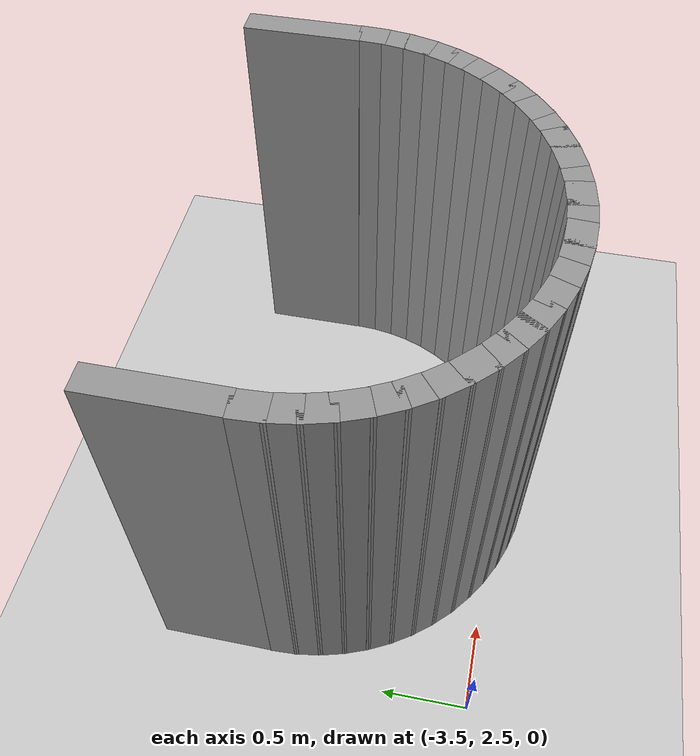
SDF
<sdf version="1.7">
 <world name="default">
  <model name="ground_plane">
   <static>1</static>
   <link name="link">
    <collision name="collision">
     <geometry><plane><normal>0 0 1</normal><size>100 100</size></plane></geometry>
     <surface>
      <contact><collide_bitmask>65535</collide_bitmask></contact>
      <friction><ode><mu>100</mu><mu2>50</mu2></ode></friction>
     </surface>
    </collision>
    <visual name="visual">
     <cast_shadows>0</cast_shadows>
     <geometry><plane><normal>0 0 1</normal><size>100 100</size></plane></geometry>
     <material>
      <script><uri>file://media/materials/scripts/gazebo.material</uri><name>Gazebo/Grey</name></script>
     </material>
    </visual>
   </link>
  </model>
  <model name="map_s_trap_goal_u">
   <link name="Goal_U_bottom_00">
    <collision name="Goal_U_bottom_00_Collision">
     <geometry><box><size>0.171727 0.15 2.5</size></box></geometry>
     <pose>0 0 1.25 0 -0 0</pose>
    </collision>
    <visual name="Goal_U_bottom_00_Visual">
     <pose>0 0 1.25 0 -0 0</pose>
     <geometry><box><size>0.171727 0.15 2.5</size></box></geometry>
     <material>
      <script><uri>file://media/materials/scripts/gazebo.material</uri><name>Gazebo/Grey</name></script>
      <ambient>1 1 1 1</ambient>
     </material>
    </visual>
    <pose>-3.310701 3.625059 0 0 -0 4.764749</pose>
   </link>
   <link name="Goal_U_bottom_01">
    <collision name="Goal_U_bottom_01_Collision">
     <geometry><box><size>0.171727 0.15 2.5</size></box></geometry>
     <pose>0 0 1.25 0 -0 0</pose>
    </collision>
    <visual name="Goal_U_bottom_01_Visual">
     <pose>0 0 1.25 0 -0 0</pose>
     <geometry><box><size>0.171727 0.15 2.5</size></box></geometry>
     <material>
      <script><uri>file://media/materials/scripts/gazebo.material</uri><name>Gazebo/Grey</name></script>
      <ambient>1 1 1 1</ambient>
     </material>
    </visual>
    <pose>-3.296341 3.488430 0 0 -0 4.869469</pose>
   </link>
   <link name="Goal_U_bottom_02">
    <collision name="Goal_U_bottom_02_Collision">
     <geometry><box><size>0.171727 0.15 2.5</size></box></geometry>
     <pose>0 0 1.25 0 -0 0</pose>
    </collision>
    <visual name="Goal_U_bottom_02_Visual">
     <pose>0 0 1.25 0 -0 0</pose>
     <geometry><box><size>0.171727 0.15 2.5</size></box></geometry>
     <material>
      <script><uri>file://media/materials/scripts/gazebo.material</uri><name>Gazebo/Grey</name></script>
      <ambient>1 1 1 1</ambient>
     </material>
    </visual>
    <pose>-3.267778 3.354050 0 0 -0 4.974188</pose>
   </link>
   <link name="Goal_U_bottom_03">
    <collision name="Goal_U_bottom_03_Collision">
     <geometry><box><size>0.171727 0.15 2.5</size></box></geometry>
     <pose>0 0 1.25 0 -0 0</pose>
    </collision>
    <visual name="Goal_U_bottom_03_Visual">
     <pose>0 0 1.25 0 -0 0</pose>
     <geometry><box><size>0.171727 0.15 2.5</size></box></geometry>
     <material>
      <script><uri>file://media/materials/scripts/gazebo.material</uri><name>Gazebo/Grey</name></script>
      <ambient>1 1 1 1</ambient>
     </material>
    </visual>
    <pose>-3.225324 3.223392 0 0 -0 5.078908</pose>
   </link>
   <link name="Goal_U_bottom_04">
    <collision name="Goal_U_bottom_04_Collision">
     <geometry><box><size>0.171727 0.15 2.5</size></box></geometry>
     <pose>0 0 1.25 0 -0 0</pose>
    </collision>
    <visual name="Goal_U_bottom_04_Visual">
     <pose>0 0 1.25 0 -0 0</pose>
     <geometry><box><size>0.171727 0.15 2.5</size></box></geometry>
     <material>
      <script><uri>file://media/materials/scripts/gazebo.material</uri><name>Gazebo/Grey</name></script>
      <ambient>1 1 1 1</ambient>
     </material>
    </visual>
    <pose>-3.169446 3.097887 0 0 -0 5.183628</pose>
   </link>
   <link name="Goal_U_bottom_05">
    <collision name="Goal_U_bottom_05_Collision">
     <geometry><box><size>0.171727 0.15 2.5</size></box></geometry>
     <pose>0 0 1.25 0 -0 0</pose>
    </collision>
    <visual name="Goal_U_bottom_05_Visual">
     <pose>0 0 1.25 0 -0 0</pose>
     <geometry><box><size>0.171727 0.15 2.5</size></box></geometry>
     <material>
      <script><uri>file://media/materials/scripts/gazebo.material</uri><name>Gazebo/Grey</name></script>
      <ambient>1 1 1 1</ambient>
     </material>
    </visual>
    <pose>-3.100755 2.978911 0 0 -0 5.288348</pose>
   </link>
   <link name="Goal_U_bottom_06">
    <collision name="Goal_U_bottom_06_Collision">
     <geometry><box><size>0.171727 0.15 2.5</size></box></geometry>
     <pose>0 0 1.25 0 -0 0</pose>
    </collision>
    <visual name="Goal_U_bottom_06_Visual">
     <pose>0 0 1.25 0 -0 0</pose>
     <geometry><box><size>0.171727 0.15 2.5</size></box></geometry>
     <material>
      <script><uri>file://media/materials/scripts/gazebo.material</uri><name>Gazebo/Grey</name></script>
      <ambient>1 1 1 1</ambient>
     </material>
    </visual>
    <pose>-3.020004 2.867767 0 0 -0 5.393067</pose>
   </link>
   <link name="Goal_U_bottom_07">
    <collision name="Goal_U_bottom_07_Collision">
     <geometry><box><size>0.171727 0.15 2.5</size></box></geometry>
     <pose>0 0 1.25 0 -0 0</pose>
    </collision>
    <visual name="Goal_U_bottom_07_Visual">
     <pose>0 0 1.25 0 -0 0</pose>
     <geometry><box><size>0.171727 0.15 2.5</size></box></geometry>
     <material>
      <script><uri>file://media/materials/scripts/gazebo.material</uri><name>Gazebo/Grey</name></script>
      <ambient>1 1 1 1</ambient>
     </material>
    </visual>
    <pose>-2.928078 2.765672 0 0 -0 5.497787</pose>
   </link>
   <link name="Goal_U_bottom_08">
    <collision name="Goal_U_bottom_08_Collision">
     <geometry><box><size>0.171727 0.15 2.5</size></box></geometry>
     <pose>0 0 1.25 0 -0 0</pose>
    </collision>
    <visual name="Goal_U_bottom_08_Visual">
     <pose>0 0 1.25 0 -0 0</pose>
     <geometry><box><size>0.171727 0.15 2.5</size></box></geometry>
     <material>
      <script><uri>file://media/materials/scripts/gazebo.material</uri><name>Gazebo/Grey</name></script>
      <ambient>1 1 1 1</ambient>
     </material>
    </visual>
    <pose>-2.825983 2.673746 0 0 -0 5.602507</pose>
   </link>
   <link name="Goal_U_bottom_09">
    <collision name="Goal_U_bottom_09_Collision">
     <geometry><box><size>0.171727 0.15 2.5</size></box></geometry>
     <pose>0 0 1.25 0 -0 0</pose>
    </collision>
    <visual name="Goal_U_bottom_09_Visual">
     <pose>0 0 1.25 0 -0 0</pose>
     <geometry><box><size>0.171727 0.15 2.5</size></box></geometry>
     <material>
      <script><uri>file://media/materials/scripts/gazebo.material</uri><name>Gazebo/Grey</name></script>
      <ambient>1 1 1 1</ambient>
     </material>
    </visual>
    <pose>-2.714839 2.592995 0 0 -0 5.707227</pose>
   </link>
   <link name="Goal_U_bottom_10">
    <collision name="Goal_U_bottom_10_Collision">
     <geometry><box><size>0.171727 0.15 2.5</size></box></geometry>
     <pose>0 0 1.25 0 -0 0</pose>
    </collision>
    <visual name="Goal_U_bottom_10_Visual">
     <pose>0 0 1.25 0 -0 0</pose>
     <geometry><box><size>0.171727 0.15 2.5</size></box></geometry>
     <material>
      <script><uri>file://media/materials/scripts/gazebo.material</uri><name>Gazebo/Grey</name></script>
      <ambient>1 1 1 1</ambient>
     </material>
    </visual>
    <pose>-2.595863 2.524304 0 0 -0 5.811946</pose>
   </link>
   <link name="Goal_U_bottom_11">
    <collision name="Goal_U_bottom_11_Collision">
     <geometry><box><size>0.171727 0.15 2.5</size></box></geometry>
     <pose>0 0 1.25 0 -0 0</pose>
    </collision>
    <visual name="Goal_U_bottom_11_Visual">
     <pose>0 0 1.25 0 -0 0</pose>
     <geometry><box><size>0.171727 0.15 2.5</size></box></geometry>
     <material>
      <script><uri>file://media/materials/scripts/gazebo.material</uri><name>Gazebo/Grey</name></script>
      <ambient>1 1 1 1</ambient>
     </material>
    </visual>
    <pose>-2.470358 2.468426 0 0 -0 5.916666</pose>
   </link>
   <link name="Goal_U_bottom_12">
    <collision name="Goal_U_bottom_12_Collision">
     <geometry><box><size>0.171727 0.15 2.5</size></box></geometry>
     <pose>0 0 1.25 0 -0 0</pose>
    </collision>
    <visual name="Goal_U_bottom_12_Visual">
     <pose>0 0 1.25 0 -0 0</pose>
     <geometry><box><size>0.171727 0.15 2.5</size></box></geometry>
     <material>
      <script><uri>file://media/materials/scripts/gazebo.material</uri><name>Gazebo/Grey</name></script>
      <ambient>1 1 1 1</ambient>
     </material>
    </visual>
    <pose>-2.339700 2.425972 0 0 -0 6.021386</pose>
   </link>
   <link name="Goal_U_bottom_13">
    <collision name="Goal_U_bottom_13_Collision">
     <geometry><box><size>0.171727 0.15 2.5</size></box></geometry>
     <pose>0 0 1.25 0 -0 0</pose>
    </collision>
    <visual name="Goal_U_bottom_13_Visual">
     <pose>0 0 1.25 0 -0 0</pose>
     <geometry><box><size>0.171727 0.15 2.5</size></box></geometry>
     <material>
      <script><uri>file://media/materials/scripts/gazebo.material</uri><name>Gazebo/Grey</name></script>
      <ambient>1 1 1 1</ambient>
     </material>
    </visual>
    <pose>-2.205320 2.397409 0 0 -0 6.126106</pose>
   </link>
   <link name="Goal_U_bottom_14">
    <collision name="Goal_U_bottom_14_Collision">
     <geometry><box><size>0.171727 0.15 2.5</size></box></geometry>
     <pose>0 0 1.25 0 -0 0</pose>
    </collision>
    <visual name="Goal_U_bottom_14_Visual">
     <pose>0 0 1.25 0 -0 0</pose>
     <geometry><box><size>0.171727 0.15 2.5</size></box></geometry>
     <material>
      <script><uri>file://media/materials/scripts/gazebo.material</uri><name>Gazebo/Grey</name></script>
      <ambient>1 1 1 1</ambient>
     </material>
    </visual>
    <pose>-2.068691 2.383049 0 0 -0 6.230825</pose>
   </link>
   <link name="Goal_U_bottom_15">
    <collision name="Goal_U_bottom_15_Collision">
     <geometry><box><size>0.171727 0.15 2.5</size></box></geometry>
     <pose>0 0 1.25 0 -0 0</pose>
    </collision>
    <visual name="Goal_U_bottom_15_Visual">
     <pose>0 0 1.25 0 -0 0</pose>
     <geometry><box><size>0.171727 0.15 2.5</size></box></geometry>
     <material>
      <script><uri>file://media/materials/scripts/gazebo.material</uri><name>Gazebo/Grey</name></script>
      <ambient>1 1 1 1</ambient>
     </material>
    </visual>
    <pose>-1.931309 2.383049 0 0 -0 6.335545</pose>
   </link>
   <link name="Goal_U_bottom_16">
    <collision name="Goal_U_bottom_16_Collision">
     <geometry><box><size>0.171727 0.15 2.5</size></box></geometry>
     <pose>0 0 1.25 0 -0 0</pose>
    </collision>
    <visual name="Goal_U_bottom_16_Visual">
     <pose>0 0 1.25 0 -0 0</pose>
     <geometry><box><size>0.171727 0.15 2.5</size></box></geometry>
     <material>
      <script><uri>file://media/materials/scripts/gazebo.material</uri><name>Gazebo/Grey</name></script>
      <ambient>1 1 1 1</ambient>
     </material>
    </visual>
    <pose>-1.794680 2.397409 0 0 -0 6.440265</pose>
   </link>
   <link name="Goal_U_bottom_17">
    <collision name="Goal_U_bottom_17_Collision">
     <geometry><box><size>0.171727 0.15 2.5</size></box></geometry>
     <pose>0 0 1.25 0 -0 0</pose>
    </collision>
    <visual name="Goal_U_bottom_17_Visual">
     <pose>0 0 1.25 0 -0 0</pose>
     <geometry><box><size>0.171727 0.15 2.5</size></box></geometry>
     <material>
      <script><uri>file://media/materials/scripts/gazebo.material</uri><name>Gazebo/Grey</name></script>
      <ambient>1 1 1 1</ambient>
     </material>
    </visual>
    <pose>-1.660300 2.425972 0 0 -0 6.544985</pose>
   </link>
   <link name="Goal_U_bottom_18">
    <collision name="Goal_U_bottom_18_Collision">
     <geometry><box><size>0.171727 0.15 2.5</size></box></geometry>
     <pose>0 0 1.25 0 -0 0</pose>
    </collision>
    <visual name="Goal_U_bottom_18_Visual">
     <pose>0 0 1.25 0 -0 0</pose>
     <geometry><box><size>0.171727 0.15 2.5</size></box></geometry>
     <material>
      <script><uri>file://media/materials/scripts/gazebo.material</uri><name>Gazebo/Grey</name></script>
      <ambient>1 1 1 1</ambient>
     </material>
    </visual>
    <pose>-1.529642 2.468426 0 0 -0 6.649704</pose>
   </link>
   <link name="Goal_U_bottom_19">
    <collision name="Goal_U_bottom_19_Collision">
     <geometry><box><size>0.171727 0.15 2.5</size></box></geometry>
     <pose>0 0 1.25 0 -0 0</pose>
    </collision>
    <visual name="Goal_U_bottom_19_Visual">
     <pose>0 0 1.25 0 -0 0</pose>
     <geometry><box><size>0.171727 0.15 2.5</size></box></geometry>
     <material>
      <script><uri>file://media/materials/scripts/gazebo.material</uri><name>Gazebo/Grey</name></script>
      <ambient>1 1 1 1</ambient>
     </material>
    </visual>
    <pose>-1.404137 2.524304 0 0 -0 6.754424</pose>
   </link>
   <link name="Goal_U_bottom_20">
    <collision name="Goal_U_bottom_20_Collision">
     <geometry><box><size>0.171727 0.15 2.5</size></box></geometry>
     <pose>0 0 1.25 0 -0 0</pose>
    </collision>
    <visual name="Goal_U_bottom_20_Visual">
     <pose>0 0 1.25 0 -0 0</pose>
     <geometry><box><size>0.171727 0.15 2.5</size></box></geometry>
     <material>
      <script><uri>file://media/materials/scripts/gazebo.material</uri><name>Gazebo/Grey</name></script>
      <ambient>1 1 1 1</ambient>
     </material>
    </visual>
    <pose>-1.285161 2.592995 0 0 -0 6.859144</pose>
   </link>
   <link name="Goal_U_bottom_21">
    <collision name="Goal_U_bottom_21_Collision">
     <geometry><box><size>0.171727 0.15 2.5</size></box></geometry>
     <pose>0 0 1.25 0 -0 0</pose>
    </collision>
    <visual name="Goal_U_bottom_21_Visual">
     <pose>0 0 1.25 0 -0 0</pose>
     <geometry><box><size>0.171727 0.15 2.5</size></box></geometry>
     <material>
      <script><uri>file://media/materials/scripts/gazebo.material</uri><name>Gazebo/Grey</name></script>
      <ambient>1 1 1 1</ambient>
     </material>
    </visual>
    <pose>-1.174017 2.673746 0 0 -0 6.963864</pose>
   </link>
   <link name="Goal_U_bottom_22">
    <collision name="Goal_U_bottom_22_Collision">
     <geometry><box><size>0.171727 0.15 2.5</size></box></geometry>
     <pose>0 0 1.25 0 -0 0</pose>
    </collision>
    <visual name="Goal_U_bottom_22_Visual">
     <pose>0 0 1.25 0 -0 0</pose>
     <geometry><box><size>0.171727 0.15 2.5</size></box></geometry>
     <material>
      <script><uri>file://media/materials/scripts/gazebo.material</uri><name>Gazebo/Grey</name></script>
      <ambient>1 1 1 1</ambient>
     </material>
    </visual>
    <pose>-1.071922 2.765672 0 0 -0 7.068583</pose>
   </link>
   <link name="Goal_U_bottom_23">
    <collision name="Goal_U_bottom_23_Collision">
     <geometry><box><size>0.171727 0.15 2.5</size></box></geometry>
     <pose>0 0 1.25 0 -0 0</pose>
    </collision>
    <visual name="Goal_U_bottom_23_Visual">
     <pose>0 0 1.25 0 -0 0</pose>
     <geometry><box><size>0.171727 0.15 2.5</size></box></geometry>
     <material>
      <script><uri>file://media/materials/scripts/gazebo.material</uri><name>Gazebo/Grey</name></script>
      <ambient>1 1 1 1</ambient>
     </material>
    </visual>
    <pose>-0.979996 2.867767 0 0 -0 7.173303</pose>
   </link>
   <link name="Goal_U_bottom_24">
    <collision name="Goal_U_bottom_24_Collision">
     <geometry><box><size>0.171727 0.15 2.5</size></box></geometry>
     <pose>0 0 1.25 0 -0 0</pose>
    </collision>
    <visual name="Goal_U_bottom_24_Visual">
     <pose>0 0 1.25 0 -0 0</pose>
     <geometry><box><size>0.171727 0.15 2.5</size></box></geometry>
     <material>
      <script><uri>file://media/materials/scripts/gazebo.material</uri><name>Gazebo/Grey</name></script>
      <ambient>1 1 1 1</ambient>
     </material>
    </visual>
    <pose>-0.899245 2.978911 0 0 -0 7.278023</pose>
   </link>
   <link name="Goal_U_bottom_25">
    <collision name="Goal_U_bottom_25_Collision">
     <geometry><box><size>0.171727 0.15 2.5</size></box></geometry>
     <pose>0 0 1.25 0 -0 0</pose>
    </collision>
    <visual name="Goal_U_bottom_25_Visual">
     <pose>0 0 1.25 0 -0 0</pose>
     <geometry><box><size>0.171727 0.15 2.5</size></box></geometry>
     <material>
      <script><uri>file://media/materials/scripts/gazebo.material</uri><name>Gazebo/Grey</name></script>
      <ambient>1 1 1 1</ambient>
     </material>
    </visual>
    <pose>-0.830554 3.097887 0 0 -0 7.382743</pose>
   </link>
   <link name="Goal_U_bottom_26">
    <collision name="Goal_U_bottom_26_Collision">
     <geometry><box><size>0.171727 0.15 2.5</size></box></geometry>
     <pose>0 0 1.25 0 -0 0</pose>
    </collision>
    <visual name="Goal_U_bottom_26_Visual">
     <pose>0 0 1.25 0 -0 0</pose>
     <geometry><box><size>0.171727 0.15 2.5</size></box></geometry>
     <material>
      <script><uri>file://media/materials/scripts/gazebo.material</uri><name>Gazebo/Grey</name></script>
      <ambient>1 1 1 1</ambient>
     </material>
    </visual>
    <pose>-0.774676 3.223392 0 0 -0 7.487462</pose>
   </link>
   <link name="Goal_U_bottom_27">
    <collision name="Goal_U_bottom_27_Collision">
     <geometry><box><size>0.171727 0.15 2.5</size></box></geometry>
     <pose>0 0 1.25 0 -0 0</pose>
    </collision>
    <visual name="Goal_U_bottom_27_Visual">
     <pose>0 0 1.25 0 -0 0</pose>
     <geometry><box><size>0.171727 0.15 2.5</size></box></geometry>
     <material>
      <script><uri>file://media/materials/scripts/gazebo.material</uri><name>Gazebo/Grey</name></script>
      <ambient>1 1 1 1</ambient>
     </material>
    </visual>
    <pose>-0.732222 3.354050 0 0 -0 7.592182</pose>
   </link>
   <link name="Goal_U_bottom_28">
    <collision name="Goal_U_bottom_28_Collision">
     <geometry><box><size>0.171727 0.15 2.5</size></box></geometry>
     <pose>0 0 1.25 0 -0 0</pose>
    </collision>
    <visual name="Goal_U_bottom_28_Visual">
     <pose>0 0 1.25 0 -0 0</pose>
     <geometry><box><size>0.171727 0.15 2.5</size></box></geometry>
     <material>
      <script><uri>file://media/materials/scripts/gazebo.material</uri><name>Gazebo/Grey</name></script>
      <ambient>1 1 1 1</ambient>
     </material>
    </visual>
    <pose>-0.703659 3.488430 0 0 -0 7.696902</pose>
   </link>
   <link name="Goal_U_bottom_29">
    <collision name="Goal_U_bottom_29_Collision">
     <geometry><box><size>0.171727 0.15 2.5</size></box></geometry>
     <pose>0 0 1.25 0 -0 0</pose>
    </collision>
    <visual name="Goal_U_bottom_29_Visual">
     <pose>0 0 1.25 0 -0 0</pose>
     <geometry><box><size>0.171727 0.15 2.5</size></box></geometry>
     <material>
      <script><uri>file://media/materials/scripts/gazebo.material</uri><name>Gazebo/Grey</name></script>
      <ambient>1 1 1 1</ambient>
     </material>
    </visual>
    <pose>-0.689299 3.625059 0 0 -0 7.801622</pose>
   </link>
   <link name="Goal_U_left">
    <collision name="Goal_U_left_Collision">
     <geometry><box><size>0.675 0.15 2.5</size></box></geometry>
     <pose>0 0 1.25 0 -0 0</pose>
    </collision>
    <visual name="Goal_U_left_Visual">
     <pose>0 0 1.25 0 -0 0</pose>
     <geometry><box><size>0.675 0.15 2.5</size></box></geometry>
     <material>
      <script><uri>file://media/materials/scripts/gazebo.material</uri><name>Gazebo/Grey</name></script>
      <ambient>1 1 1 1</ambient>
     </material>
    </visual>
    <pose>-3.312500 4.031250 0 0 -0 1.570796</pose>
   </link>
   <link name="Goal_U_right">
    <collision name="Goal_U_right_Collision">
     <geometry><box><size>0.675 0.15 2.5</size></box></geometry>
     <pose>0 0 1.25 0 -0 0</pose>
    </collision>
    <visual name="Goal_U_right_Visual">
     <pose>0 0 1.25 0 -0 0</pose>
     <geometry><box><size>0.675 0.15 2.5</size></box></geometry>
     <material>
      <script><uri>file://media/materials/scripts/gazebo.material</uri><name>Gazebo/Grey</name></script>
      <ambient>1 1 1 1</ambient>
     </material>
    </visual>
    <pose>-0.687500 4.031250 0 0 -0 1.570796</pose>
   </link>
   <static>1</static>
  </model>
 </world>
</sdf>
